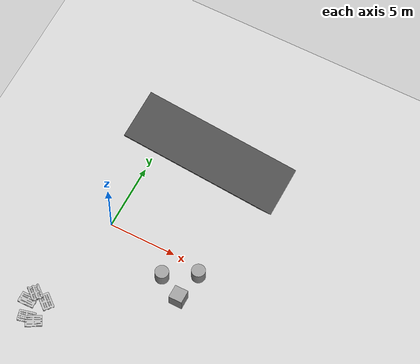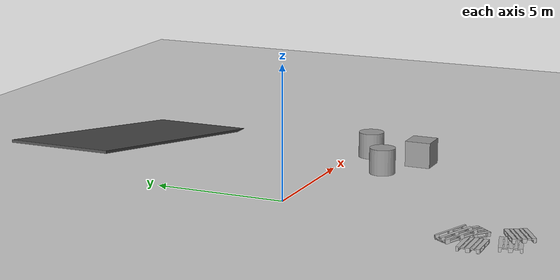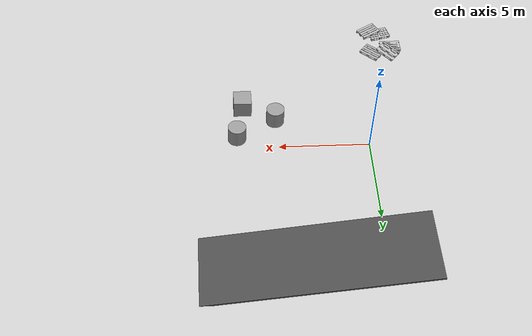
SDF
<sdf version="1.7">
 <world name="default">
  <light name="sun" type="directional">
   <pose>0 0 10 0 -0 0</pose>
   <diffuse>0.8 0.8 0.8 1</diffuse>
   <specular>0.2 0.2 0.2 1</specular>
   <attenuation>
    <range>1000</range>
    <constant>0.9</constant>
    <linear>0.01</linear>
    <quadratic>0.001</quadratic>
   </attenuation>
   <direction>-0.5 0.1 -0.9</direction>
   <spot><inner_angle>0</inner_angle><outer_angle>0</outer_angle><falloff>0</falloff></spot>
  </light>
  <model name="ground_plane">
   <static>1</static>
   <link name="link">
    <collision name="collision">
     <geometry><plane><normal>0 0 1</normal><size>100 100</size></plane></geometry>
     <surface>
      <contact><collide_bitmask>65535</collide_bitmask></contact>
      <friction><ode><mu>100</mu><mu2>50</mu2></ode></friction>
     </surface>
    </collision>
    <visual name="visual">
     <cast_shadows>0</cast_shadows>
     <geometry><plane><normal>0 0 1</normal><size>100 100</size></plane></geometry>
     <material>
      <script><uri>file://media/materials/scripts/gazebo.material</uri><name>Gazebo/Grey</name></script>
     </material>
    </visual>
   </link>
  </model>
  <physics name="default_physics" default="0" type="ode">
   <gravity>0 0 -9.8066</gravity>
   <ode>
    <solver>
     <type>quick</type>
     <iters>10</iters>
     <sor>1.3</sor>
     <use_dynamic_moi_rescaling>0</use_dynamic_moi_rescaling>
    </solver>
    <constraints>
     <cfm>0</cfm>
     <erp>0.2</erp>
     <contact_max_correcting_vel>100</contact_max_correcting_vel>
     <contact_surface_layer>0.001</contact_surface_layer>
    </constraints>
   </ode>
   <max_step_size>0.004</max_step_size>
   <real_time_factor>1</real_time_factor>
   <real_time_update_rate>250</real_time_update_rate>
   <magnetic_field>6.0e-6 2.3e-5 -4.2e-5</magnetic_field>
  </physics>
  <scene><ambient>0.4 0.4 0.4 1</ambient><background>0.7 0.7 0.7 1</background><shadows>1</shadows></scene>
  <spherical_coordinates>
   <surface_model>EARTH_WGS84</surface_model>
   <latitude_deg>0</latitude_deg>
   <longitude_deg>0</longitude_deg>
   <elevation>0</elevation>
   <heading_deg>0</heading_deg>
  </spherical_coordinates>
  <model name="ramp">
   <static>1</static>
   <pose>7.71205 7.95431 0.2 0 0.15 0</pose>
   <link name="link">
    <collision name="collision"><geometry><box><size>20 4 0.1</size></box></geometry></collision>
    <visual name="visual">
     <geometry><box><size>20 4 0.1</size></box></geometry>
     <material>
      <script><uri>model://asphalt_plane/materials/scripts/asphalt.material</uri><name>vrc/asphalt</name></script>
     </material>
    </visual>
   </link>
  </model>
  <model name="unit_cylinder">
   <pose>5.10526 -1.94042 0.5 0 0 0</pose>
   <link name="link">
    <inertial>
     <mass>1</mass>
     <inertia><ixx>0.145833</ixx><ixy>0</ixy><ixz>0</ixz><iyy>0.145833</iyy><iyz>0</iyz><izz>0.125</izz></inertia>
    </inertial>
    <collision name="collision">
     <geometry><cylinder><radius>0.5</radius><length>1</length></cylinder></geometry>
    </collision>
    <visual name="visual">
     <geometry><cylinder><radius>0.5</radius><length>1</length></cylinder></geometry>
     <material>
      <script><name>Gazebo/Grey</name><uri>file://media/materials/scripts/gazebo.material</uri></script>
     </material>
    </visual>
   </link>
  </model>
  <model name="unit_box">
   <pose>6.9155 -2.903 0.5 0 0 0</pose>
   <link name="link">
    <inertial>
     <mass>1</mass>
     <inertia>
      <ixx>0.166667</ixx>
      <ixy>0</ixy>
      <ixz>0</ixz>
      <iyy>0.166667</iyy>
      <iyz>0</iyz>
      <izz>0.166667</izz>
     </inertia>
    </inertial>
    <collision name="collision"><geometry><box><size>1 1 1</size></box></geometry></collision>
    <visual name="visual">
     <geometry><box><size>1 1 1</size></box></geometry>
     <material>
      <script><name>Gazebo/Grey</name><uri>file://media/materials/scripts/gazebo.material</uri></script>
     </material>
    </visual>
   </link>
  </model>
  <model name="unit_cylinder_0">
   <pose>7.29937 -0.680724 0.5 0 0 0</pose>
   <link name="link">
    <inertial>
     <mass>1</mass>
     <inertia><ixx>0.145833</ixx><ixy>0</ixy><ixz>0</ixz><iyy>0.145833</iyy><iyz>0</iyz><izz>0.125</izz></inertia>
    </inertial>
    <collision name="collision">
     <geometry><cylinder><radius>0.5</radius><length>1</length></cylinder></geometry>
    </collision>
    <visual name="visual">
     <geometry><cylinder><radius>0.5</radius><length>1</length></cylinder></geometry>
     <material>
      <script><name>Gazebo/Grey</name><uri>file://media/materials/scripts/gazebo.material</uri></script>
     </material>
    </visual>
   </link>
  </model>
  <model name="EuroPallet">
   <pose>-1.72756 -8.87783 0.061865 0.001727 -0.004562 0.246745</pose>
   <static>0</static>
   <link name="link">
    <inertial>
     <mass>25</mass>
     <inertia><ixx>1</ixx><ixy>0</ixy><ixz>0</ixz><iyy>1</iyy><iyz>0</iyz><izz>1</izz></inertia>
    </inertial>
    <collision name="top">
     <pose>0 0 0.0625 0 -0 0</pose>
     <geometry><box><size>1.2 0.8 0.042</size></box></geometry>
    </collision>
    <collision name="colum_1">
     <pose>0.5275 -0.35 0 0 -0 0</pose>
     <geometry><box><size>0.145 0.1 0.085</size></box></geometry>
    </collision>
    <collision name="colum_2">
     <pose>0.5275 0 0 0 -0 0</pose>
     <geometry><box><size>0.145 0.145 0.085</size></box></geometry>
    </collision>
    <collision name="colum_3">
     <pose>0.5275 0.35 0 0 -0 0</pose>
     <geometry><box><size>0.145 0.1 0.085</size></box></geometry>
    </collision>
    <collision name="colum_4">
     <pose>0 -0.35 0 0 -0 0</pose>
     <geometry><box><size>0.145 0.1 0.085</size></box></geometry>
    </collision>
    <collision name="colum_5"><geometry><box><size>0.145 0.145 0.085</size></box></geometry></collision>
    <collision name="colum_6">
     <pose>0 0.35 0 0 -0 0</pose>
     <geometry><box><size>0.145 0.1 0.085</size></box></geometry>
    </collision>
    <collision name="colum_7">
     <pose>-0.5275 -0.35 0 0 -0 0</pose>
     <geometry><box><size>0.145 0.1 0.085</size></box></geometry>
    </collision>
    <collision name="colum_8">
     <pose>-0.5275 0 0 0 -0 0</pose>
     <geometry><box><size>0.145 0.145 0.085</size></box></geometry>
    </collision>
    <collision name="colum_9">
     <pose>-0.5275 0.35 0 0 -0 0</pose>
     <geometry><box><size>0.145 0.1 0.085</size></box></geometry>
    </collision>
    <collision name="bottom_1">
     <pose>0 -0.35 -0.053 0 -0 0</pose>
     <geometry><box><size>1.2 0.1 0.021</size></box></geometry>
    </collision>
    <collision name="bottom_2">
     <pose>0 0 -0.053 0 -0 0</pose>
     <geometry><box><size>1.2 0.145 0.021</size></box></geometry>
    </collision>
    <collision name="bottom_3">
     <pose>0 0.35 -0.053 0 -0 0</pose>
     <geometry><box><size>1.2 0.1 0.021</size></box></geometry>
    </collision>
    <visual name="visual">
     <geometry><mesh><uri>model://europallet/meshes/europallet.dae</uri></mesh></geometry>
    </visual>
   </link>
  </model>
  <model name="EuroPallet_0">
   <pose>-1.1 -9.0 0.2 0.00101 0.0174 0.520475</pose>
   <static>0</static>
   <link name="link">
    <inertial>
     <mass>25</mass>
     <inertia><ixx>1</ixx><ixy>0</ixy><ixz>0</ixz><iyy>1</iyy><iyz>0</iyz><izz>1</izz></inertia>
    </inertial>
    <collision name="top">
     <pose>0 0 0.0625 0 -0 0</pose>
     <geometry><box><size>1.2 0.8 0.042</size></box></geometry>
    </collision>
    <collision name="colum_1">
     <pose>0.5275 -0.35 0 0 -0 0</pose>
     <geometry><box><size>0.145 0.1 0.085</size></box></geometry>
    </collision>
    <collision name="colum_2">
     <pose>0.5275 0 0 0 -0 0</pose>
     <geometry><box><size>0.145 0.145 0.085</size></box></geometry>
    </collision>
    <collision name="colum_3">
     <pose>0.5275 0.35 0 0 -0 0</pose>
     <geometry><box><size>0.145 0.1 0.085</size></box></geometry>
    </collision>
    <collision name="colum_4">
     <pose>0 -0.35 0 0 -0 0</pose>
     <geometry><box><size>0.145 0.1 0.085</size></box></geometry>
    </collision>
    <collision name="colum_5"><geometry><box><size>0.145 0.145 0.085</size></box></geometry></collision>
    <collision name="colum_6">
     <pose>0 0.35 0 0 -0 0</pose>
     <geometry><box><size>0.145 0.1 0.085</size></box></geometry>
    </collision>
    <collision name="colum_7">
     <pose>-0.5275 -0.35 0 0 -0 0</pose>
     <geometry><box><size>0.145 0.1 0.085</size></box></geometry>
    </collision>
    <collision name="colum_8">
     <pose>-0.5275 0 0 0 -0 0</pose>
     <geometry><box><size>0.145 0.145 0.085</size></box></geometry>
    </collision>
    <collision name="colum_9">
     <pose>-0.5275 0.35 0 0 -0 0</pose>
     <geometry><box><size>0.145 0.1 0.085</size></box></geometry>
    </collision>
    <collision name="bottom_1">
     <pose>0 -0.35 -0.053 0 -0 0</pose>
     <geometry><box><size>1.2 0.1 0.021</size></box></geometry>
    </collision>
    <collision name="bottom_2">
     <pose>0 0 -0.053 0 -0 0</pose>
     <geometry><box><size>1.2 0.145 0.021</size></box></geometry>
    </collision>
    <collision name="bottom_3">
     <pose>0 0.35 -0.053 0 -0 0</pose>
     <geometry><box><size>1.2 0.1 0.021</size></box></geometry>
    </collision>
    <visual name="visual">
     <geometry><mesh><uri>model://europallet/meshes/europallet.dae</uri></mesh></geometry>
    </visual>
   </link>
  </model>
  <model name="EuroPallet_1">
   <pose>-2.27651 -7.75114 0.0635 0.0 0.0 0.008197</pose>
   <static>0</static>
   <link name="link">
    <inertial>
     <mass>25</mass>
     <inertia><ixx>1</ixx><ixy>0</ixy><ixz>0</ixz><iyy>1</iyy><iyz>0</iyz><izz>1</izz></inertia>
    </inertial>
    <collision name="top">
     <pose>0 0 0.0625 0 -0 0</pose>
     <geometry><box><size>1.2 0.8 0.042</size></box></geometry>
    </collision>
    <collision name="colum_1">
     <pose>0.5275 -0.35 0 0 -0 0</pose>
     <geometry><box><size>0.145 0.1 0.085</size></box></geometry>
    </collision>
    <collision name="colum_2">
     <pose>0.5275 0 0 0 -0 0</pose>
     <geometry><box><size>0.145 0.145 0.085</size></box></geometry>
    </collision>
    <collision name="colum_3">
     <pose>0.5275 0.35 0 0 -0 0</pose>
     <geometry><box><size>0.145 0.1 0.085</size></box></geometry>
    </collision>
    <collision name="colum_4">
     <pose>0 -0.35 0 0 -0 0</pose>
     <geometry><box><size>0.145 0.1 0.085</size></box></geometry>
    </collision>
    <collision name="colum_5"><geometry><box><size>0.145 0.145 0.085</size></box></geometry></collision>
    <collision name="colum_6">
     <pose>0 0.35 0 0 -0 0</pose>
     <geometry><box><size>0.145 0.1 0.085</size></box></geometry>
    </collision>
    <collision name="colum_7">
     <pose>-0.5275 -0.35 0 0 -0 0</pose>
     <geometry><box><size>0.145 0.1 0.085</size></box></geometry>
    </collision>
    <collision name="colum_8">
     <pose>-0.5275 0 0 0 -0 0</pose>
     <geometry><box><size>0.145 0.145 0.085</size></box></geometry>
    </collision>
    <collision name="colum_9">
     <pose>-0.5275 0.35 0 0 -0 0</pose>
     <geometry><box><size>0.145 0.1 0.085</size></box></geometry>
    </collision>
    <collision name="bottom_1">
     <pose>0 -0.35 -0.053 0 -0 0</pose>
     <geometry><box><size>1.2 0.1 0.021</size></box></geometry>
    </collision>
    <collision name="bottom_2">
     <pose>0 0 -0.053 0 -0 0</pose>
     <geometry><box><size>1.2 0.145 0.021</size></box></geometry>
    </collision>
    <collision name="bottom_3">
     <pose>0 0.35 -0.053 0 -0 0</pose>
     <geometry><box><size>1.2 0.1 0.021</size></box></geometry>
    </collision>
    <visual name="visual">
     <geometry><mesh><uri>model://europallet/meshes/europallet.dae</uri></mesh></geometry>
    </visual>
   </link>
  </model>
  <model name="EuroPallet_2">
   <pose>-1.09738 -7.28374 0.062318 0.00028 -0.002704 -0.7038</pose>
   <static>0</static>
   <link name="link">
    <inertial>
     <mass>25</mass>
     <inertia><ixx>1</ixx><ixy>0</ixy><ixz>0</ixz><iyy>1</iyy><iyz>0</iyz><izz>1</izz></inertia>
    </inertial>
    <collision name="top">
     <pose>0 0 0.0625 0 -0 0</pose>
     <geometry><box><size>1.2 0.8 0.042</size></box></geometry>
    </collision>
    <collision name="colum_1">
     <pose>0.5275 -0.35 0 0 -0 0</pose>
     <geometry><box><size>0.145 0.1 0.085</size></box></geometry>
    </collision>
    <collision name="colum_2">
     <pose>0.5275 0 0 0 -0 0</pose>
     <geometry><box><size>0.145 0.145 0.085</size></box></geometry>
    </collision>
    <collision name="colum_3">
     <pose>0.5275 0.35 0 0 -0 0</pose>
     <geometry><box><size>0.145 0.1 0.085</size></box></geometry>
    </collision>
    <collision name="colum_4">
     <pose>0 -0.35 0 0 -0 0</pose>
     <geometry><box><size>0.145 0.1 0.085</size></box></geometry>
    </collision>
    <collision name="colum_5"><geometry><box><size>0.145 0.145 0.085</size></box></geometry></collision>
    <collision name="colum_6">
     <pose>0 0.35 0 0 -0 0</pose>
     <geometry><box><size>0.145 0.1 0.085</size></box></geometry>
    </collision>
    <collision name="colum_7">
     <pose>-0.5275 -0.35 0 0 -0 0</pose>
     <geometry><box><size>0.145 0.1 0.085</size></box></geometry>
    </collision>
    <collision name="colum_8">
     <pose>-0.5275 0 0 0 -0 0</pose>
     <geometry><box><size>0.145 0.145 0.085</size></box></geometry>
    </collision>
    <collision name="colum_9">
     <pose>-0.5275 0.35 0 0 -0 0</pose>
     <geometry><box><size>0.145 0.1 0.085</size></box></geometry>
    </collision>
    <collision name="bottom_1">
     <pose>0 -0.35 -0.053 0 -0 0</pose>
     <geometry><box><size>1.2 0.1 0.021</size></box></geometry>
    </collision>
    <collision name="bottom_2">
     <pose>0 0 -0.053 0 -0 0</pose>
     <geometry><box><size>1.2 0.145 0.021</size></box></geometry>
    </collision>
    <collision name="bottom_3">
     <pose>0 0.35 -0.053 0 -0 0</pose>
     <geometry><box><size>1.2 0.1 0.021</size></box></geometry>
    </collision>
    <visual name="visual">
     <geometry><mesh><uri>model://europallet/meshes/europallet.dae</uri></mesh></geometry>
    </visual>
   </link>
  </model>
  <model name="EuroPallet_3">
   <pose>-2.0333 -7.09947 0.3 3.07019 -0.179045 -0.720548</pose>
   <static>0</static>
   <link name="link">
    <inertial>
     <mass>25</mass>
     <inertia><ixx>1</ixx><ixy>0</ixy><ixz>0</ixz><iyy>1</iyy><iyz>0</iyz><izz>1</izz></inertia>
    </inertial>
    <collision name="top">
     <pose>0 0 0.0625 0 -0 0</pose>
     <geometry><box><size>1.2 0.8 0.042</size></box></geometry>
    </collision>
    <collision name="colum_1">
     <pose>0.5275 -0.35 0 0 -0 0</pose>
     <geometry><box><size>0.145 0.1 0.085</size></box></geometry>
    </collision>
    <collision name="colum_2">
     <pose>0.5275 0 0 0 -0 0</pose>
     <geometry><box><size>0.145 0.145 0.085</size></box></geometry>
    </collision>
    <collision name="colum_3">
     <pose>0.5275 0.35 0 0 -0 0</pose>
     <geometry><box><size>0.145 0.1 0.085</size></box></geometry>
    </collision>
    <collision name="colum_4">
     <pose>0 -0.35 0 0 -0 0</pose>
     <geometry><box><size>0.145 0.1 0.085</size></box></geometry>
    </collision>
    <collision name="colum_5"><geometry><box><size>0.145 0.145 0.085</size></box></geometry></collision>
    <collision name="colum_6">
     <pose>0 0.35 0 0 -0 0</pose>
     <geometry><box><size>0.145 0.1 0.085</size></box></geometry>
    </collision>
    <collision name="colum_7">
     <pose>-0.5275 -0.35 0 0 -0 0</pose>
     <geometry><box><size>0.145 0.1 0.085</size></box></geometry>
    </collision>
    <collision name="colum_8">
     <pose>-0.5275 0 0 0 -0 0</pose>
     <geometry><box><size>0.145 0.145 0.085</size></box></geometry>
    </collision>
    <collision name="colum_9">
     <pose>-0.5275 0.35 0 0 -0 0</pose>
     <geometry><box><size>0.145 0.1 0.085</size></box></geometry>
    </collision>
    <collision name="bottom_1">
     <pose>0 -0.35 -0.053 0 -0 0</pose>
     <geometry><box><size>1.2 0.1 0.021</size></box></geometry>
    </collision>
    <collision name="bottom_2">
     <pose>0 0 -0.053 0 -0 0</pose>
     <geometry><box><size>1.2 0.145 0.021</size></box></geometry>
    </collision>
    <collision name="bottom_3">
     <pose>0 0.35 -0.053 0 -0 0</pose>
     <geometry><box><size>1.2 0.1 0.021</size></box></geometry>
    </collision>
    <visual name="visual">
     <geometry><mesh><uri>model://europallet/meshes/europallet.dae</uri></mesh></geometry>
    </visual>
   </link>
  </model>
 </world>
</sdf>
